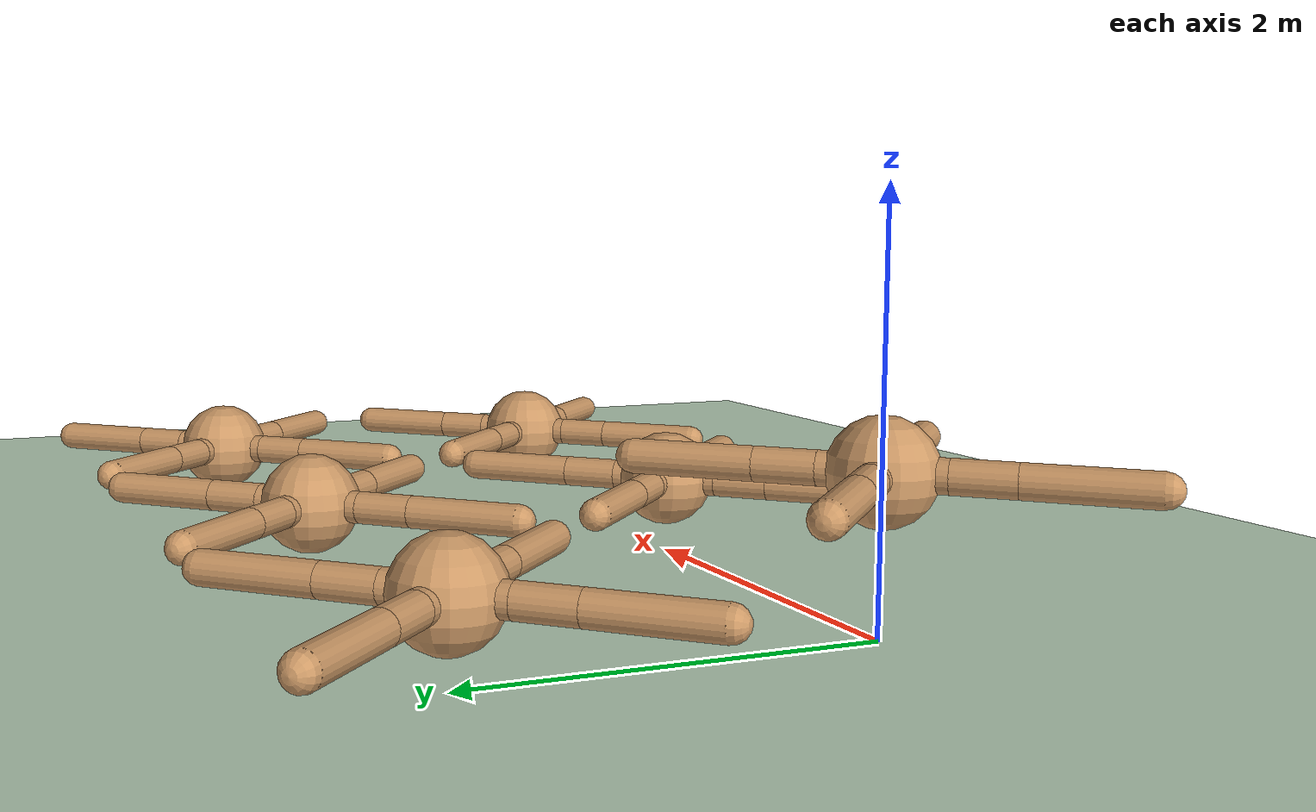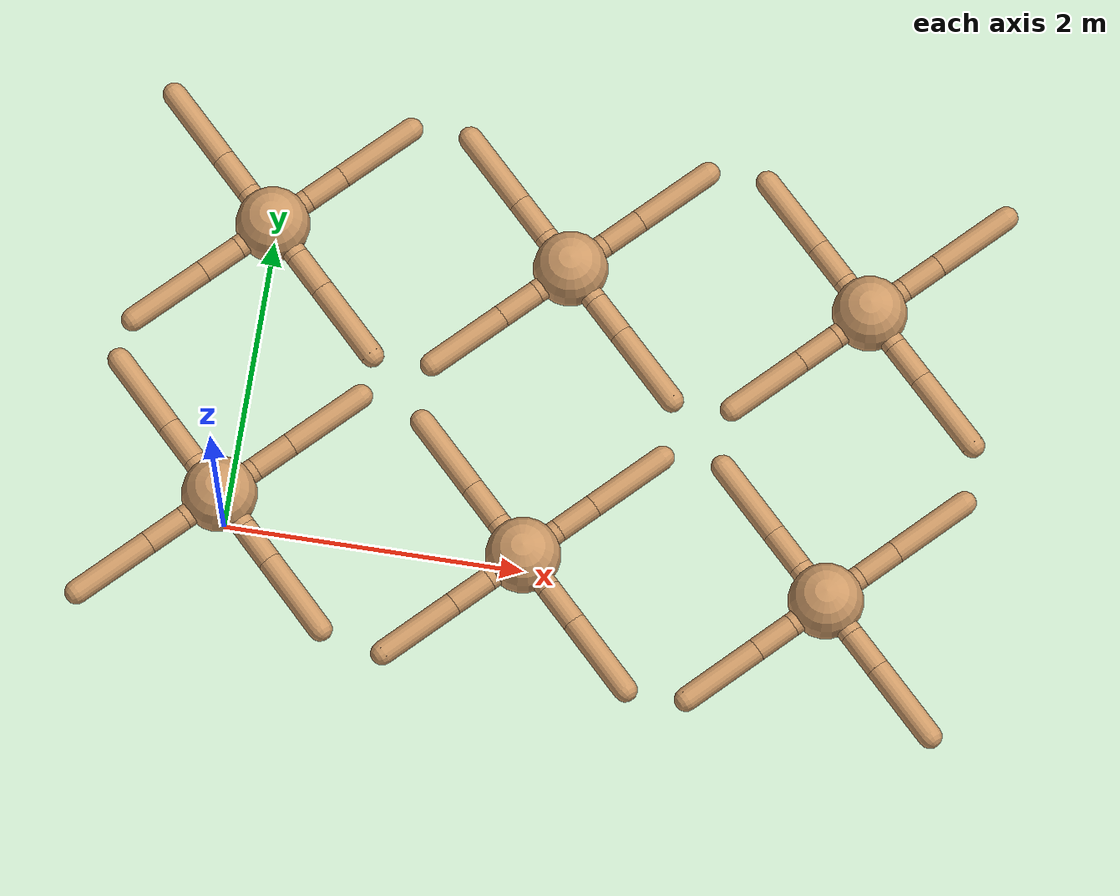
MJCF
<mujoco model="ant">
  <compiler angle="degree" coordinate="local" inertiafromgeom="true" />
  <option integrator="RK4" timestep="0.01" />
  <custom>
    <numeric data="0.0 0.0 0.55 1.0 0.0 0.0 0.0 0.0 1.0 0.0 -1.0 0.0 -1.0 0.0 1.0" name="init_qpos" />
  </custom>
  <default>
    <joint armature="1" damping="1" limited="true" />
    <geom conaffinity="0" condim="3" density="5.0" friction="1 0.5 0.5" margin="0.01" rgba="0.8 0.6 0.4 1" />
  </default>
  <asset>
    <texture builtin="gradient" height="100" rgb1="1 1 1" rgb2="0 0 0" type="skybox" width="100" />
    <texture builtin="flat" height="1278" mark="cross" markrgb="1 1 1" name="texgeom" random="0.01" rgb1="0.8 0.6 0.4" rgb2="0.8 0.6 0.4" type="cube" width="127" />
    <texture builtin="checker" height="100" name="texplane" rgb1="0 0 0" rgb2="0.8 0.8 0.8" type="2d" width="100" />
    <material name="MatPlane" reflectance="0.5" shininess="1" specular="1" texrepeat="60 60" texture="texplane" />
    <material name="geom" texture="texgeom" texuniform="true" />
  </asset>
  <worldbody>
    <light cutoff="100" diffuse="1 1 1" dir="-0 0 -1.3" directional="true" exponent="1" pos="0 0 1.3" specular=".1 .1 .1" />
    <geom conaffinity="1" condim="3" material="MatPlane" name="floor" pos="0 0 0" rgba="0.8 0.9 0.8 1" size="40 40 40" type="plane" />
    <body name="torso" pos="0 0 0.75">
      <geom name="torso_geom" pos="0 0 0" size="0.25" type="sphere" />
      <joint armature="0" damping="0" limited="false" margin="0.01" name="root" pos="0 0 0" type="free" />
      <body name="front_left_leg" pos="0 0 0">
        <geom fromto="0.0 0.0 0.0 0.2 0.2 0.0" name="aux_1_geom" size="0.08" type="capsule" />
        <body name="aux_1" pos="0.2 0.2 0">
          <joint axis="0 0 1" name="hip_1" pos="0.0 0.0 0.0" range="-30 30" type="hinge" />
          <geom fromto="0.0 0.0 0.0 0.2 0.2 0.0" name="left_leg_geom" size="0.08" type="capsule" />
          <body pos="0.2 0.2 0">
            <joint axis="-1 1 0" name="ankle_1" pos="0.0 0.0 0.0" range="30 70" type="hinge" />
            <geom fromto="0.0 0.0 0.0 0.4 0.4 0.0" name="left_ankle_geom" size="0.08" type="capsule" />
          </body>
        </body>
      </body>
      <body name="front_right_leg" pos="0 0 0">
        <geom fromto="0.0 0.0 0.0 -0.2 0.2 0.0" name="aux_2_geom" size="0.08" type="capsule" />
        <body name="aux_2" pos="-0.2 0.2 0">
          <joint axis="0 0 1" name="hip_2" pos="0.0 0.0 0.0" range="-30 30" type="hinge" />
          <geom fromto="0.0 0.0 0.0 -0.2 0.2 0.0" name="right_leg_geom" size="0.08" type="capsule" />
          <body pos="-0.2 0.2 0">
            <joint axis="1 1 0" name="ankle_2" pos="0.0 0.0 0.0" range="-70 -30" type="hinge" />
            <geom fromto="0.0 0.0 0.0 -0.4 0.4 0.0" name="right_ankle_geom" size="0.08" type="capsule" />
          </body>
        </body>
      </body>
      <body name="back_leg" pos="0 0 0">
        <geom fromto="0.0 0.0 0.0 -0.2 -0.2 0.0" name="aux_3_geom" size="0.08" type="capsule" />
        <body name="aux_3" pos="-0.2 -0.2 0">
          <joint axis="0 0 1" name="hip_3" pos="0.0 0.0 0.0" range="-30 30" type="hinge" />
          <geom fromto="0.0 0.0 0.0 -0.2 -0.2 0.0" name="back_leg_geom" size="0.08" type="capsule" />
          <body pos="-0.2 -0.2 0">
            <joint axis="-1 1 0" name="ankle_3" pos="0.0 0.0 0.0" range="-70 -30" type="hinge" />
            <geom fromto="0.0 0.0 0.0 -0.4 -0.4 0.0" name="third_ankle_geom" size="0.08" type="capsule" />
          </body>
        </body>
      </body>
      <body name="right_back_leg" pos="0 0 0">
        <geom fromto="0.0 0.0 0.0 0.2 -0.2 0.0" name="aux_4_geom" size="0.08" type="capsule" />
        <body name="aux_4" pos="0.2 -0.2 0">
          <joint axis="0 0 1" name="hip_4" pos="0.0 0.0 0.0" range="-30 30" type="hinge" />
          <geom fromto="0.0 0.0 0.0 0.2 -0.2 0.0" name="rightback_leg_geom" size="0.08" type="capsule" />
          <body pos="0.2 -0.2 0">
            <joint axis="1 1 0" name="ankle_4" pos="0.0 0.0 0.0" range="30 70" type="hinge" />
            <geom fromto="0.0 0.0 0.0 0.4 -0.4 0.0" name="fourth_ankle_geom" size="0.08" type="capsule" />
          </body>
        </body>
      </body>
    </body>
  <camera name="track" mode="trackcom" pos="0 -3 0.3" xyaxes="1 0 0 0 0 1" />
      <body name="ant_1_1" pos="2.0 0.0 0.4">
      <geom name="torso_geom_1" pos="0 0 0" size="0.25" type="sphere" />
      <joint armature="0" damping="0" limited="false" margin="0.01" name="root_1" pos="0 0 0" type="free" />
      <body name="front_left_leg_1" pos="0 0 0">
        <geom fromto="0.0 0.0 0.0 0.2 0.2 0.0" name="aux_1_geom_1" size="0.08" type="capsule" />
        <body name="aux_1_1" pos="0.2 0.2 0">
          <joint axis="0 0 1" name="hip_1_1" pos="0.0 0.0 0.0" range="-30 30" type="hinge" />
          <geom fromto="0.0 0.0 0.0 0.2 0.2 0.0" name="left_leg_geom_1" size="0.08" type="capsule" />
          <body pos="0.2 0.2 0">
            <joint axis="-1 1 0" name="ankle_1_1" pos="0.0 0.0 0.0" range="30 70" type="hinge" />
            <geom fromto="0.0 0.0 0.0 0.4 0.4 0.0" name="left_ankle_geom_1" size="0.08" type="capsule" />
          </body>
        </body>
      </body>
      <body name="front_right_leg_1" pos="0 0 0">
        <geom fromto="0.0 0.0 0.0 -0.2 0.2 0.0" name="aux_2_geom_1" size="0.08" type="capsule" />
        <body name="aux_2_1" pos="-0.2 0.2 0">
          <joint axis="0 0 1" name="hip_2_1" pos="0.0 0.0 0.0" range="-30 30" type="hinge" />
          <geom fromto="0.0 0.0 0.0 -0.2 0.2 0.0" name="right_leg_geom_1" size="0.08" type="capsule" />
          <body pos="-0.2 0.2 0">
            <joint axis="1 1 0" name="ankle_2_1" pos="0.0 0.0 0.0" range="-70 -30" type="hinge" />
            <geom fromto="0.0 0.0 0.0 -0.4 0.4 0.0" name="right_ankle_geom_1" size="0.08" type="capsule" />
          </body>
        </body>
      </body>
      <body name="back_leg_1" pos="0 0 0">
        <geom fromto="0.0 0.0 0.0 -0.2 -0.2 0.0" name="aux_3_geom_1" size="0.08" type="capsule" />
        <body name="aux_3_1" pos="-0.2 -0.2 0">
          <joint axis="0 0 1" name="hip_3_1" pos="0.0 0.0 0.0" range="-30 30" type="hinge" />
          <geom fromto="0.0 0.0 0.0 -0.2 -0.2 0.0" name="back_leg_geom_1" size="0.08" type="capsule" />
          <body pos="-0.2 -0.2 0">
            <joint axis="-1 1 0" name="ankle_3_1" pos="0.0 0.0 0.0" range="-70 -30" type="hinge" />
            <geom fromto="0.0 0.0 0.0 -0.4 -0.4 0.0" name="third_ankle_geom_1" size="0.08" type="capsule" />
          </body>
        </body>
      </body>
      <body name="right_back_leg_1" pos="0 0 0">
        <geom fromto="0.0 0.0 0.0 0.2 -0.2 0.0" name="aux_4_geom_1" size="0.08" type="capsule" />
        <body name="aux_4_1" pos="0.2 -0.2 0">
          <joint axis="0 0 1" name="hip_4_1" pos="0.0 0.0 0.0" range="-30 30" type="hinge" />
          <geom fromto="0.0 0.0 0.0 0.2 -0.2 0.0" name="rightback_leg_geom_1" size="0.08" type="capsule" />
          <body pos="0.2 -0.2 0">
            <joint axis="1 1 0" name="ankle_4_1" pos="0.0 0.0 0.0" range="30 70" type="hinge" />
            <geom fromto="0.0 0.0 0.0 0.4 -0.4 0.0" name="fourth_ankle_geom_1" size="0.08" type="capsule" />
          </body>
        </body>
      </body>
    </body>
  <body name="ant_2_2" pos="4.0 0.0 0.4">
      <geom name="torso_geom_2" pos="0 0 0" size="0.25" type="sphere" />
      <joint armature="0" damping="0" limited="false" margin="0.01" name="root_2" pos="0 0 0" type="free" />
      <body name="front_left_leg_2" pos="0 0 0">
        <geom fromto="0.0 0.0 0.0 0.2 0.2 0.0" name="aux_1_geom_2" size="0.08" type="capsule" />
        <body name="aux_1_2" pos="0.2 0.2 0">
          <joint axis="0 0 1" name="hip_1_2" pos="0.0 0.0 0.0" range="-30 30" type="hinge" />
          <geom fromto="0.0 0.0 0.0 0.2 0.2 0.0" name="left_leg_geom_2" size="0.08" type="capsule" />
          <body pos="0.2 0.2 0">
            <joint axis="-1 1 0" name="ankle_1_2" pos="0.0 0.0 0.0" range="30 70" type="hinge" />
            <geom fromto="0.0 0.0 0.0 0.4 0.4 0.0" name="left_ankle_geom_2" size="0.08" type="capsule" />
          </body>
        </body>
      </body>
      <body name="front_right_leg_2" pos="0 0 0">
        <geom fromto="0.0 0.0 0.0 -0.2 0.2 0.0" name="aux_2_geom_2" size="0.08" type="capsule" />
        <body name="aux_2_2" pos="-0.2 0.2 0">
          <joint axis="0 0 1" name="hip_2_2" pos="0.0 0.0 0.0" range="-30 30" type="hinge" />
          <geom fromto="0.0 0.0 0.0 -0.2 0.2 0.0" name="right_leg_geom_2" size="0.08" type="capsule" />
          <body pos="-0.2 0.2 0">
            <joint axis="1 1 0" name="ankle_2_2" pos="0.0 0.0 0.0" range="-70 -30" type="hinge" />
            <geom fromto="0.0 0.0 0.0 -0.4 0.4 0.0" name="right_ankle_geom_2" size="0.08" type="capsule" />
          </body>
        </body>
      </body>
      <body name="back_leg_2" pos="0 0 0">
        <geom fromto="0.0 0.0 0.0 -0.2 -0.2 0.0" name="aux_3_geom_2" size="0.08" type="capsule" />
        <body name="aux_3_2" pos="-0.2 -0.2 0">
          <joint axis="0 0 1" name="hip_3_2" pos="0.0 0.0 0.0" range="-30 30" type="hinge" />
          <geom fromto="0.0 0.0 0.0 -0.2 -0.2 0.0" name="back_leg_geom_2" size="0.08" type="capsule" />
          <body pos="-0.2 -0.2 0">
            <joint axis="-1 1 0" name="ankle_3_2" pos="0.0 0.0 0.0" range="-70 -30" type="hinge" />
            <geom fromto="0.0 0.0 0.0 -0.4 -0.4 0.0" name="third_ankle_geom_2" size="0.08" type="capsule" />
          </body>
        </body>
      </body>
      <body name="right_back_leg_2" pos="0 0 0">
        <geom fromto="0.0 0.0 0.0 0.2 -0.2 0.0" name="aux_4_geom_2" size="0.08" type="capsule" />
        <body name="aux_4_2" pos="0.2 -0.2 0">
          <joint axis="0 0 1" name="hip_4_2" pos="0.0 0.0 0.0" range="-30 30" type="hinge" />
          <geom fromto="0.0 0.0 0.0 0.2 -0.2 0.0" name="rightback_leg_geom_2" size="0.08" type="capsule" />
          <body pos="0.2 -0.2 0">
            <joint axis="1 1 0" name="ankle_4_2" pos="0.0 0.0 0.0" range="30 70" type="hinge" />
            <geom fromto="0.0 0.0 0.0 0.4 -0.4 0.0" name="fourth_ankle_geom_2" size="0.08" type="capsule" />
          </body>
        </body>
      </body>
    </body>
  <body name="ant_3_3" pos="0.0 2.0 0.4">
      <geom name="torso_geom_3" pos="0 0 0" size="0.25" type="sphere" />
      <joint armature="0" damping="0" limited="false" margin="0.01" name="root_3" pos="0 0 0" type="free" />
      <body name="front_left_leg_3" pos="0 0 0">
        <geom fromto="0.0 0.0 0.0 0.2 0.2 0.0" name="aux_1_geom_3" size="0.08" type="capsule" />
        <body name="aux_1_3" pos="0.2 0.2 0">
          <joint axis="0 0 1" name="hip_1_3" pos="0.0 0.0 0.0" range="-30 30" type="hinge" />
          <geom fromto="0.0 0.0 0.0 0.2 0.2 0.0" name="left_leg_geom_3" size="0.08" type="capsule" />
          <body pos="0.2 0.2 0">
            <joint axis="-1 1 0" name="ankle_1_3" pos="0.0 0.0 0.0" range="30 70" type="hinge" />
            <geom fromto="0.0 0.0 0.0 0.4 0.4 0.0" name="left_ankle_geom_3" size="0.08" type="capsule" />
          </body>
        </body>
      </body>
      <body name="front_right_leg_3" pos="0 0 0">
        <geom fromto="0.0 0.0 0.0 -0.2 0.2 0.0" name="aux_2_geom_3" size="0.08" type="capsule" />
        <body name="aux_2_3" pos="-0.2 0.2 0">
          <joint axis="0 0 1" name="hip_2_3" pos="0.0 0.0 0.0" range="-30 30" type="hinge" />
          <geom fromto="0.0 0.0 0.0 -0.2 0.2 0.0" name="right_leg_geom_3" size="0.08" type="capsule" />
          <body pos="-0.2 0.2 0">
            <joint axis="1 1 0" name="ankle_2_3" pos="0.0 0.0 0.0" range="-70 -30" type="hinge" />
            <geom fromto="0.0 0.0 0.0 -0.4 0.4 0.0" name="right_ankle_geom_3" size="0.08" type="capsule" />
          </body>
        </body>
      </body>
      <body name="back_leg_3" pos="0 0 0">
        <geom fromto="0.0 0.0 0.0 -0.2 -0.2 0.0" name="aux_3_geom_3" size="0.08" type="capsule" />
        <body name="aux_3_3" pos="-0.2 -0.2 0">
          <joint axis="0 0 1" name="hip_3_3" pos="0.0 0.0 0.0" range="-30 30" type="hinge" />
          <geom fromto="0.0 0.0 0.0 -0.2 -0.2 0.0" name="back_leg_geom_3" size="0.08" type="capsule" />
          <body pos="-0.2 -0.2 0">
            <joint axis="-1 1 0" name="ankle_3_3" pos="0.0 0.0 0.0" range="-70 -30" type="hinge" />
            <geom fromto="0.0 0.0 0.0 -0.4 -0.4 0.0" name="third_ankle_geom_3" size="0.08" type="capsule" />
          </body>
        </body>
      </body>
      <body name="right_back_leg_3" pos="0 0 0">
        <geom fromto="0.0 0.0 0.0 0.2 -0.2 0.0" name="aux_4_geom_3" size="0.08" type="capsule" />
        <body name="aux_4_3" pos="0.2 -0.2 0">
          <joint axis="0 0 1" name="hip_4_3" pos="0.0 0.0 0.0" range="-30 30" type="hinge" />
          <geom fromto="0.0 0.0 0.0 0.2 -0.2 0.0" name="rightback_leg_geom_3" size="0.08" type="capsule" />
          <body pos="0.2 -0.2 0">
            <joint axis="1 1 0" name="ankle_4_3" pos="0.0 0.0 0.0" range="30 70" type="hinge" />
            <geom fromto="0.0 0.0 0.0 0.4 -0.4 0.0" name="fourth_ankle_geom_3" size="0.08" type="capsule" />
          </body>
        </body>
      </body>
    </body>
  <body name="ant_4_4" pos="2.0 2.0 0.4">
      <geom name="torso_geom_4" pos="0 0 0" size="0.25" type="sphere" />
      <joint armature="0" damping="0" limited="false" margin="0.01" name="root_4" pos="0 0 0" type="free" />
      <body name="front_left_leg_4" pos="0 0 0">
        <geom fromto="0.0 0.0 0.0 0.2 0.2 0.0" name="aux_1_geom_4" size="0.08" type="capsule" />
        <body name="aux_1_4" pos="0.2 0.2 0">
          <joint axis="0 0 1" name="hip_1_4" pos="0.0 0.0 0.0" range="-30 30" type="hinge" />
          <geom fromto="0.0 0.0 0.0 0.2 0.2 0.0" name="left_leg_geom_4" size="0.08" type="capsule" />
          <body pos="0.2 0.2 0">
            <joint axis="-1 1 0" name="ankle_1_4" pos="0.0 0.0 0.0" range="30 70" type="hinge" />
            <geom fromto="0.0 0.0 0.0 0.4 0.4 0.0" name="left_ankle_geom_4" size="0.08" type="capsule" />
          </body>
        </body>
      </body>
      <body name="front_right_leg_4" pos="0 0 0">
        <geom fromto="0.0 0.0 0.0 -0.2 0.2 0.0" name="aux_2_geom_4" size="0.08" type="capsule" />
        <body name="aux_2_4" pos="-0.2 0.2 0">
          <joint axis="0 0 1" name="hip_2_4" pos="0.0 0.0 0.0" range="-30 30" type="hinge" />
          <geom fromto="0.0 0.0 0.0 -0.2 0.2 0.0" name="right_leg_geom_4" size="0.08" type="capsule" />
          <body pos="-0.2 0.2 0">
            <joint axis="1 1 0" name="ankle_2_4" pos="0.0 0.0 0.0" range="-70 -30" type="hinge" />
            <geom fromto="0.0 0.0 0.0 -0.4 0.4 0.0" name="right_ankle_geom_4" size="0.08" type="capsule" />
          </body>
        </body>
      </body>
      <body name="back_leg_4" pos="0 0 0">
        <geom fromto="0.0 0.0 0.0 -0.2 -0.2 0.0" name="aux_3_geom_4" size="0.08" type="capsule" />
        <body name="aux_3_4" pos="-0.2 -0.2 0">
          <joint axis="0 0 1" name="hip_3_4" pos="0.0 0.0 0.0" range="-30 30" type="hinge" />
          <geom fromto="0.0 0.0 0.0 -0.2 -0.2 0.0" name="back_leg_geom_4" size="0.08" type="capsule" />
          <body pos="-0.2 -0.2 0">
            <joint axis="-1 1 0" name="ankle_3_4" pos="0.0 0.0 0.0" range="-70 -30" type="hinge" />
            <geom fromto="0.0 0.0 0.0 -0.4 -0.4 0.0" name="third_ankle_geom_4" size="0.08" type="capsule" />
          </body>
        </body>
      </body>
      <body name="right_back_leg_4" pos="0 0 0">
        <geom fromto="0.0 0.0 0.0 0.2 -0.2 0.0" name="aux_4_geom_4" size="0.08" type="capsule" />
        <body name="aux_4_4" pos="0.2 -0.2 0">
          <joint axis="0 0 1" name="hip_4_4" pos="0.0 0.0 0.0" range="-30 30" type="hinge" />
          <geom fromto="0.0 0.0 0.0 0.2 -0.2 0.0" name="rightback_leg_geom_4" size="0.08" type="capsule" />
          <body pos="0.2 -0.2 0">
            <joint axis="1 1 0" name="ankle_4_4" pos="0.0 0.0 0.0" range="30 70" type="hinge" />
            <geom fromto="0.0 0.0 0.0 0.4 -0.4 0.0" name="fourth_ankle_geom_4" size="0.08" type="capsule" />
          </body>
        </body>
      </body>
    </body>
  <body name="ant_5_5" pos="4.0 2.0 0.4">
      <geom name="torso_geom_5" pos="0 0 0" size="0.25" type="sphere" />
      <joint armature="0" damping="0" limited="false" margin="0.01" name="root_5" pos="0 0 0" type="free" />
      <body name="front_left_leg_5" pos="0 0 0">
        <geom fromto="0.0 0.0 0.0 0.2 0.2 0.0" name="aux_1_geom_5" size="0.08" type="capsule" />
        <body name="aux_1_5" pos="0.2 0.2 0">
          <joint axis="0 0 1" name="hip_1_5" pos="0.0 0.0 0.0" range="-30 30" type="hinge" />
          <geom fromto="0.0 0.0 0.0 0.2 0.2 0.0" name="left_leg_geom_5" size="0.08" type="capsule" />
          <body pos="0.2 0.2 0">
            <joint axis="-1 1 0" name="ankle_1_5" pos="0.0 0.0 0.0" range="30 70" type="hinge" />
            <geom fromto="0.0 0.0 0.0 0.4 0.4 0.0" name="left_ankle_geom_5" size="0.08" type="capsule" />
          </body>
        </body>
      </body>
      <body name="front_right_leg_5" pos="0 0 0">
        <geom fromto="0.0 0.0 0.0 -0.2 0.2 0.0" name="aux_2_geom_5" size="0.08" type="capsule" />
        <body name="aux_2_5" pos="-0.2 0.2 0">
          <joint axis="0 0 1" name="hip_2_5" pos="0.0 0.0 0.0" range="-30 30" type="hinge" />
          <geom fromto="0.0 0.0 0.0 -0.2 0.2 0.0" name="right_leg_geom_5" size="0.08" type="capsule" />
          <body pos="-0.2 0.2 0">
            <joint axis="1 1 0" name="ankle_2_5" pos="0.0 0.0 0.0" range="-70 -30" type="hinge" />
            <geom fromto="0.0 0.0 0.0 -0.4 0.4 0.0" name="right_ankle_geom_5" size="0.08" type="capsule" />
          </body>
        </body>
      </body>
      <body name="back_leg_5" pos="0 0 0">
        <geom fromto="0.0 0.0 0.0 -0.2 -0.2 0.0" name="aux_3_geom_5" size="0.08" type="capsule" />
        <body name="aux_3_5" pos="-0.2 -0.2 0">
          <joint axis="0 0 1" name="hip_3_5" pos="0.0 0.0 0.0" range="-30 30" type="hinge" />
          <geom fromto="0.0 0.0 0.0 -0.2 -0.2 0.0" name="back_leg_geom_5" size="0.08" type="capsule" />
          <body pos="-0.2 -0.2 0">
            <joint axis="-1 1 0" name="ankle_3_5" pos="0.0 0.0 0.0" range="-70 -30" type="hinge" />
            <geom fromto="0.0 0.0 0.0 -0.4 -0.4 0.0" name="third_ankle_geom_5" size="0.08" type="capsule" />
          </body>
        </body>
      </body>
      <body name="right_back_leg_5" pos="0 0 0">
        <geom fromto="0.0 0.0 0.0 0.2 -0.2 0.0" name="aux_4_geom_5" size="0.08" type="capsule" />
        <body name="aux_4_5" pos="0.2 -0.2 0">
          <joint axis="0 0 1" name="hip_4_5" pos="0.0 0.0 0.0" range="-30 30" type="hinge" />
          <geom fromto="0.0 0.0 0.0 0.2 -0.2 0.0" name="rightback_leg_geom_5" size="0.08" type="capsule" />
          <body pos="0.2 -0.2 0">
            <joint axis="1 1 0" name="ankle_4_5" pos="0.0 0.0 0.0" range="30 70" type="hinge" />
            <geom fromto="0.0 0.0 0.0 0.4 -0.4 0.0" name="fourth_ankle_geom_5" size="0.08" type="capsule" />
          </body>
        </body>
      </body>
    </body>
  </worldbody>
  <actuator>
    <motor ctrllimited="true" ctrlrange="-1.0 1.0" joint="hip_4" gear="150" />
    <motor ctrllimited="true" ctrlrange="-1.0 1.0" joint="ankle_4" gear="150" />
    <motor ctrllimited="true" ctrlrange="-1.0 1.0" joint="hip_1" gear="150" />
    <motor ctrllimited="true" ctrlrange="-1.0 1.0" joint="ankle_1" gear="150" />
    <motor ctrllimited="true" ctrlrange="-1.0 1.0" joint="hip_2" gear="150" />
    <motor ctrllimited="true" ctrlrange="-1.0 1.0" joint="ankle_2" gear="150" />
    <motor ctrllimited="true" ctrlrange="-1.0 1.0" joint="hip_3" gear="150" />
    <motor ctrllimited="true" ctrlrange="-1.0 1.0" joint="ankle_3" gear="150" />
  <motor ctrllimited="true" ctrlrange="-1.0 1.0" joint="hip_4_1" gear="150" name="hip_4_motor_1" />
    <motor ctrllimited="true" ctrlrange="-1.0 1.0" joint="ankle_4_1" gear="150" name="ankle_4_motor_1" />
    <motor ctrllimited="true" ctrlrange="-1.0 1.0" joint="hip_1_1" gear="150" name="hip_1_motor_1" />
    <motor ctrllimited="true" ctrlrange="-1.0 1.0" joint="ankle_1_1" gear="150" name="ankle_1_motor_1" />
    <motor ctrllimited="true" ctrlrange="-1.0 1.0" joint="hip_2_1" gear="150" name="hip_2_motor_1" />
    <motor ctrllimited="true" ctrlrange="-1.0 1.0" joint="ankle_2_1" gear="150" name="ankle_2_motor_1" />
    <motor ctrllimited="true" ctrlrange="-1.0 1.0" joint="hip_3_1" gear="150" name="hip_3_motor_1" />
    <motor ctrllimited="true" ctrlrange="-1.0 1.0" joint="ankle_3_1" gear="150" name="ankle_3_motor_1" />
  <motor ctrllimited="true" ctrlrange="-1.0 1.0" joint="hip_4_2" gear="150" name="hip_4_motor_2" />
    <motor ctrllimited="true" ctrlrange="-1.0 1.0" joint="ankle_4_2" gear="150" name="ankle_4_motor_2" />
    <motor ctrllimited="true" ctrlrange="-1.0 1.0" joint="hip_1_2" gear="150" name="hip_1_motor_2" />
    <motor ctrllimited="true" ctrlrange="-1.0 1.0" joint="ankle_1_2" gear="150" name="ankle_1_motor_2" />
    <motor ctrllimited="true" ctrlrange="-1.0 1.0" joint="hip_2_2" gear="150" name="hip_2_motor_2" />
    <motor ctrllimited="true" ctrlrange="-1.0 1.0" joint="ankle_2_2" gear="150" name="ankle_2_motor_2" />
    <motor ctrllimited="true" ctrlrange="-1.0 1.0" joint="hip_3_2" gear="150" name="hip_3_motor_2" />
    <motor ctrllimited="true" ctrlrange="-1.0 1.0" joint="ankle_3_2" gear="150" name="ankle_3_motor_2" />
  <motor ctrllimited="true" ctrlrange="-1.0 1.0" joint="hip_4_3" gear="150" name="hip_4_motor_3" />
    <motor ctrllimited="true" ctrlrange="-1.0 1.0" joint="ankle_4_3" gear="150" name="ankle_4_motor_3" />
    <motor ctrllimited="true" ctrlrange="-1.0 1.0" joint="hip_1_3" gear="150" name="hip_1_motor_3" />
    <motor ctrllimited="true" ctrlrange="-1.0 1.0" joint="ankle_1_3" gear="150" name="ankle_1_motor_3" />
    <motor ctrllimited="true" ctrlrange="-1.0 1.0" joint="hip_2_3" gear="150" name="hip_2_motor_3" />
    <motor ctrllimited="true" ctrlrange="-1.0 1.0" joint="ankle_2_3" gear="150" name="ankle_2_motor_3" />
    <motor ctrllimited="true" ctrlrange="-1.0 1.0" joint="hip_3_3" gear="150" name="hip_3_motor_3" />
    <motor ctrllimited="true" ctrlrange="-1.0 1.0" joint="ankle_3_3" gear="150" name="ankle_3_motor_3" />
  <motor ctrllimited="true" ctrlrange="-1.0 1.0" joint="hip_4_4" gear="150" name="hip_4_motor_4" />
    <motor ctrllimited="true" ctrlrange="-1.0 1.0" joint="ankle_4_4" gear="150" name="ankle_4_motor_4" />
    <motor ctrllimited="true" ctrlrange="-1.0 1.0" joint="hip_1_4" gear="150" name="hip_1_motor_4" />
    <motor ctrllimited="true" ctrlrange="-1.0 1.0" joint="ankle_1_4" gear="150" name="ankle_1_motor_4" />
    <motor ctrllimited="true" ctrlrange="-1.0 1.0" joint="hip_2_4" gear="150" name="hip_2_motor_4" />
    <motor ctrllimited="true" ctrlrange="-1.0 1.0" joint="ankle_2_4" gear="150" name="ankle_2_motor_4" />
    <motor ctrllimited="true" ctrlrange="-1.0 1.0" joint="hip_3_4" gear="150" name="hip_3_motor_4" />
    <motor ctrllimited="true" ctrlrange="-1.0 1.0" joint="ankle_3_4" gear="150" name="ankle_3_motor_4" />
  <motor ctrllimited="true" ctrlrange="-1.0 1.0" joint="hip_4_5" gear="150" name="hip_4_motor_5" />
    <motor ctrllimited="true" ctrlrange="-1.0 1.0" joint="ankle_4_5" gear="150" name="ankle_4_motor_5" />
    <motor ctrllimited="true" ctrlrange="-1.0 1.0" joint="hip_1_5" gear="150" name="hip_1_motor_5" />
    <motor ctrllimited="true" ctrlrange="-1.0 1.0" joint="ankle_1_5" gear="150" name="ankle_1_motor_5" />
    <motor ctrllimited="true" ctrlrange="-1.0 1.0" joint="hip_2_5" gear="150" name="hip_2_motor_5" />
    <motor ctrllimited="true" ctrlrange="-1.0 1.0" joint="ankle_2_5" gear="150" name="ankle_2_motor_5" />
    <motor ctrllimited="true" ctrlrange="-1.0 1.0" joint="hip_3_5" gear="150" name="hip_3_motor_5" />
    <motor ctrllimited="true" ctrlrange="-1.0 1.0" joint="ankle_3_5" gear="150" name="ankle_3_motor_5" />
  </actuator>
</mujoco>
